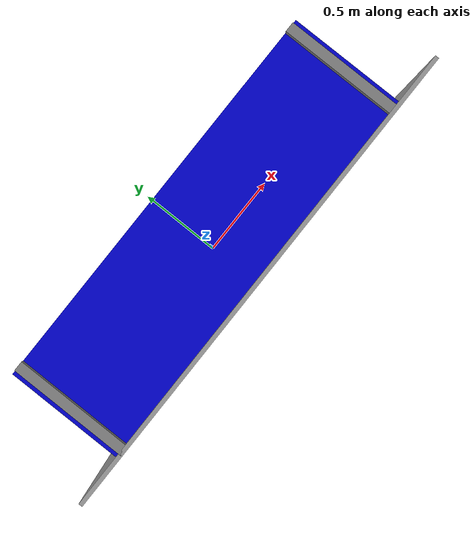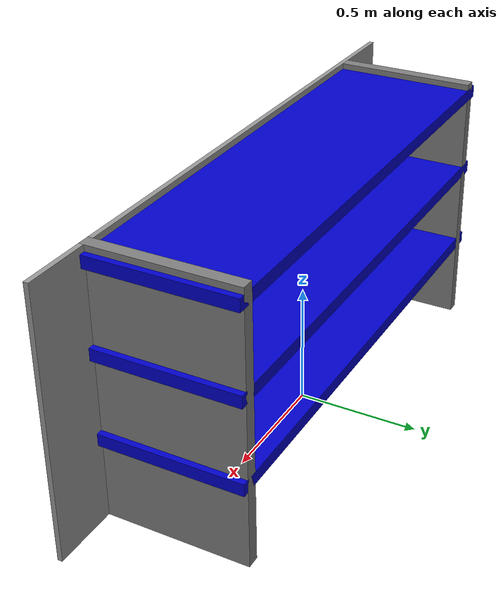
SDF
<?xml version="1.0" ?>
<sdf version="1.8">
  <model name="shelf">
    <static>true</static>
    <!-- Left Leg -->
    <link name="leg1">
      <pose>-0.95 0 0.55 0 0 0</pose>
      <collision name="col_leg1">
        <geometry><box><size>0.05 0.6 1.1</size></box></geometry>
      </collision>
      <visual name="vis_leg1">
        <geometry><box><size>0.05 0.6 1.1</size></box></geometry>
        <material><ambient>0.5 0.5 0.5 1</ambient><diffuse>0.5 0.5 0.5 1</diffuse></material>
      </visual>
    </link>
    <!-- Right Leg -->
    <link name="leg2">
      <pose>0.95 0 0.55 0 0 0</pose>
      <collision name="col_leg2">
        <geometry><box><size>0.05 0.6 1.1</size></box></geometry>
      </collision>
      <visual name="vis_leg2">
        <geometry><box><size>0.05 0.6 1.1</size></box></geometry>
        <material><ambient>0.5 0.5 0.5 1</ambient><diffuse>0.5 0.5 0.5 1</diffuse></material>
      </visual>
    </link>
    <!-- Level 1 (0.35m) -->
    <link name="level1">
      <pose>0 0 0.35 0 0 0</pose>
      <collision name="base_lidar_collision">
        <pose>0 0 -0.20 0 0 0</pose>
        <geometry><box><size>2.5 0.6 0.3</size></box></geometry>
      </collision>
      <collision name="col_level1">
        <geometry><box><size>2.0 0.6 0.05</size></box></geometry>
      </collision>
      <visual name="vis_level1">
        <geometry><box><size>2.0 0.6 0.05</size></box></geometry>
        <material><ambient>0 0 0.8 1</ambient><diffuse>0 0 0.8 1</diffuse></material>
      </visual>
    </link>
    <!-- Level 2 (0.70m) -->
    <link name="level2">
      <pose>0 0 0.70 0 0 0</pose>
      <collision name="col_level2">
        <geometry><box><size>2.0 0.6 0.05</size></box></geometry>
      </collision>
      <visual name="vis_level2">
        <geometry><box><size>2.0 0.6 0.05</size></box></geometry>
        <material><ambient>0 0 0.8 1</ambient><diffuse>0 0 0.8 1</diffuse></material>
      </visual>
    </link>
    <!-- Level 3 (1.05m) -->
    <link name="level3">
      <pose>0 0 1.05 0 0 0</pose>
      <collision name="col_level3">
        <geometry><box><size>2.0 0.6 0.05</size></box></geometry>
      </collision>
      <visual name="vis_level3">
        <geometry><box><size>2.0 0.6 0.05</size></box></geometry>
        <material><ambient>0 0 0.8 1</ambient><diffuse>0 0 0.8 1</diffuse></material>
      </visual>
    </link>
    <!-- Backboard -->
    <link name="backboard">
      <pose>0 -0.29 0.55 0 0 0</pose>
      <collision name="col_backboard">
        <geometry><box><size>2.5 0.02 1.1</size></box></geometry>
      </collision>
      <visual name="vis_backboard">
        <geometry><box><size>2.5 0.02 1.1</size></box></geometry>
        <material><ambient>0.6 0.6 0.6 1</ambient><diffuse>0.6 0.6 0.6 1</diffuse></material>
      </visual>
    </link>
  </model>
</sdf>
